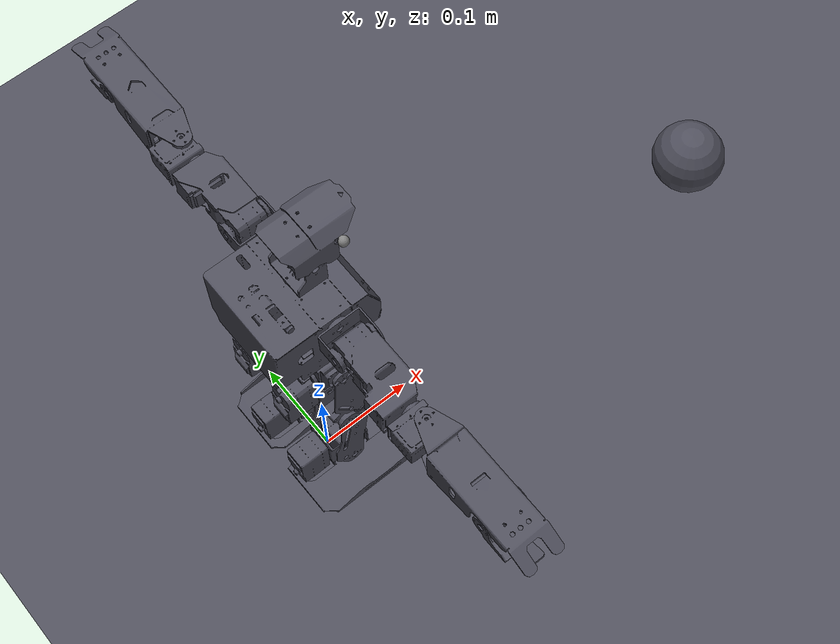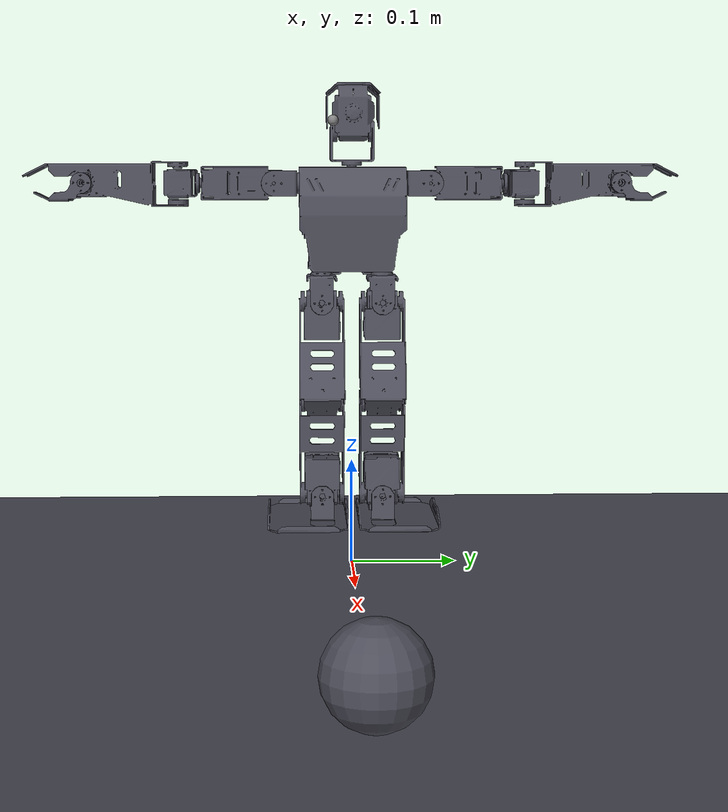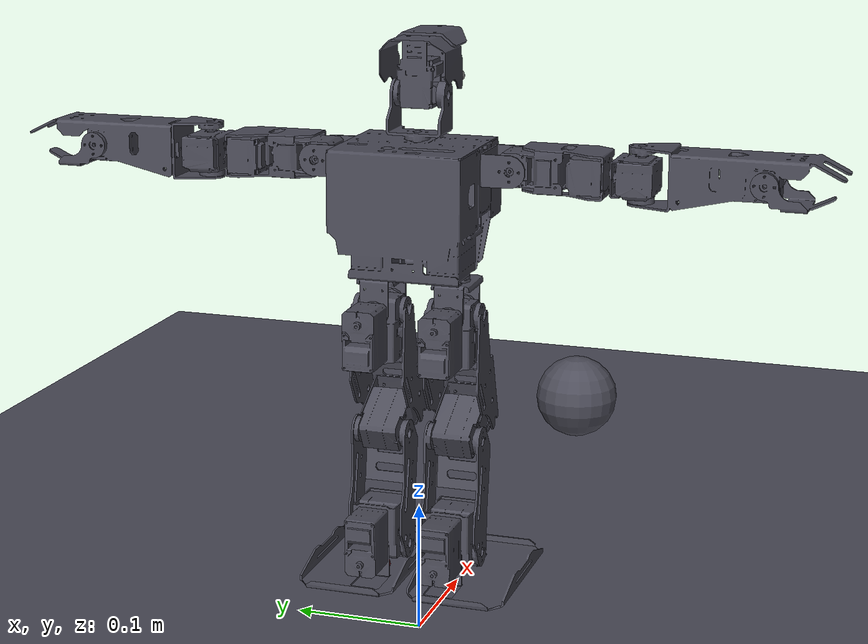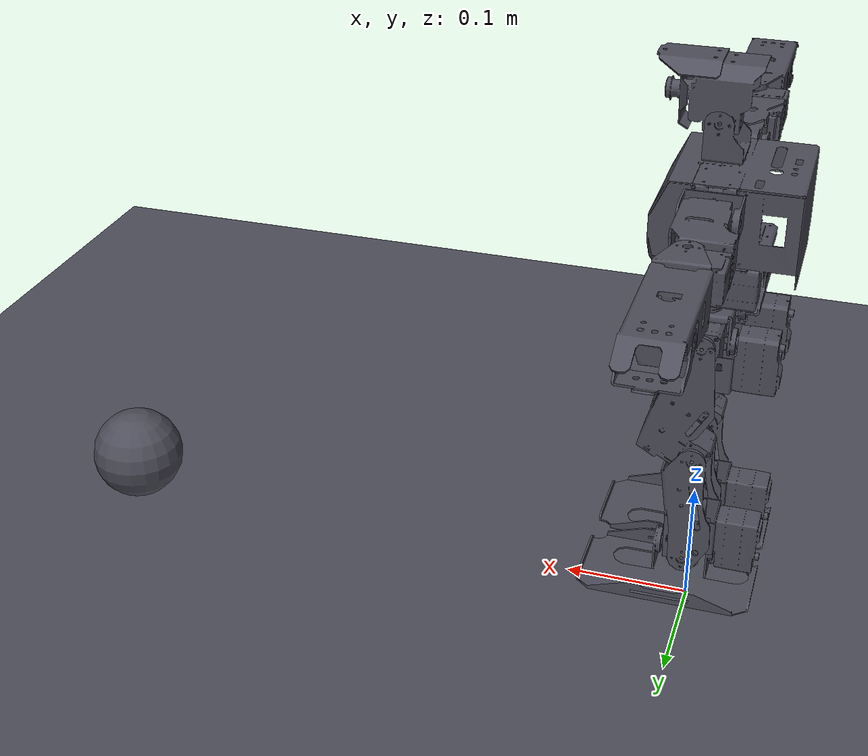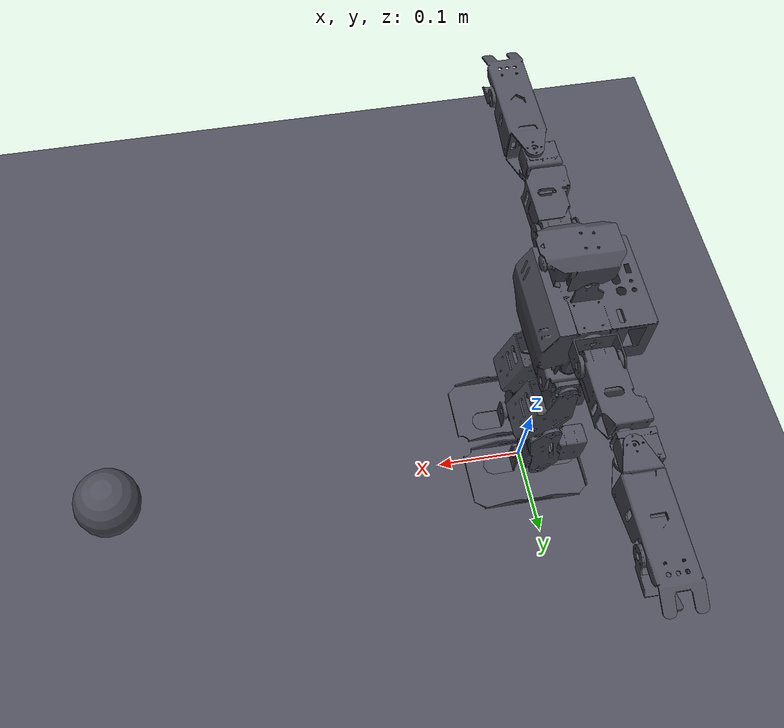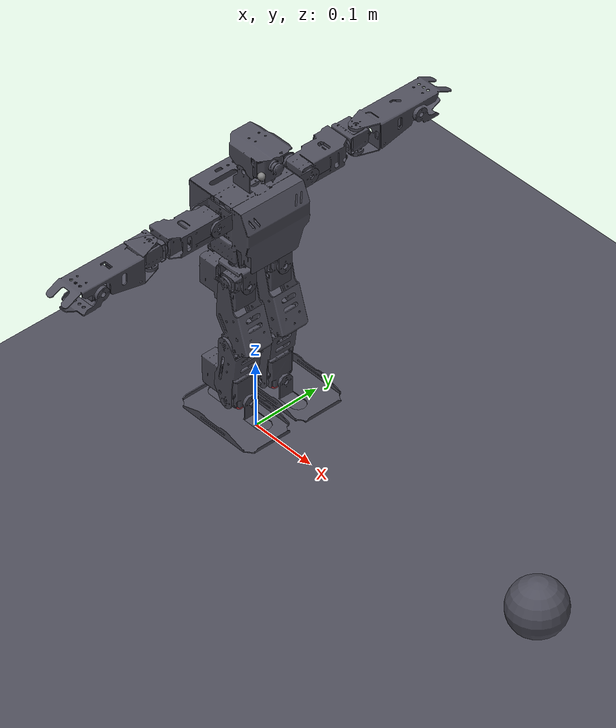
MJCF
<mujoco model="ainex">
  <compiler angle="radian" meshdir="../meshes/"
            autolimits="true"/>

  <option timestep="0.002" gravity="0 0 -9.81" solver="Newton" iterations="100" tolerance="1e-10"
          integrator="implicitfast" cone="elliptic">
    <flag warmstart="enable" contact="enable"/>
  </option>

  <default>
    <joint limited="true" damping="5.0" armature="0.04" frictionloss="0.1"
           range="-1.57 1.57"/>
    <geom contype="0" conaffinity="0" condim="3" friction="0.7 0.1 0.001"
          rgba="0.3 0.3 0.35 1" type="mesh"/>
    <motor ctrllimited="true" ctrlrange="-6 6"/>
    <position kp="50" kv="5"/>
  </default>

  <asset>
    <texture type="skybox" builtin="gradient" rgb1="0.4 0.6 0.8" rgb2="0.1 0.1 0.2" width="512" height="512"/>
    <texture name="grid" type="2d" builtin="checker" rgb1="0.35 0.4 0.45" rgb2="0.4 0.45 0.5"
             width="512" height="512" mark="edge" markrgb="0.5 0.55 0.6"/>
    <material name="grid" texture="grid" texrepeat="8 8" texuniform="true" reflectance="0.3"/>
    <material name="robot_dark" rgba="0.25 0.25 0.28 1" specular="0.4" shininess="0.5"/>
    <material name="robot_accent" rgba="0.3 0.5 0.9 1" specular="0.5" shininess="0.7"/>
    <material name="foot" rgba="0.3 0.3 0.3 1" specular="0.2" shininess="0.3"/>
    <material name="ball_red" rgba="0.9 0.15 0.15 1" specular="0.8" shininess="0.9"/>

    <!-- Robot meshes -->
    <mesh name="body_link" file="body_link.STL" scale="1 1 1"/>
    <mesh name="r_hip_yaw_link" file="r_hip_yaw_link.STL"/>
    <mesh name="r_hip_roll_link" file="r_hip_roll_link.STL"/>
    <mesh name="r_hip_pitch_link" file="r_hip_pitch_link.STL"/>
    <mesh name="r_knee_link" file="r_knee_link.STL"/>
    <mesh name="r_ank_pitch_link" file="r_ank_pitch_link.STL"/>
    <mesh name="r_ank_roll_link" file="r_ank_roll_link.STL"/>
    <mesh name="l_hip_yaw_link" file="l_hip_yaw_link.STL"/>
    <mesh name="l_hip_roll_link" file="l_hip_roll_link.STL"/>
    <mesh name="l_hip_pitch_link" file="l_hip_pitch_link.STL"/>
    <mesh name="l_knee_link" file="l_knee_link.STL"/>
    <mesh name="l_ank_pitch_link" file="l_ank_pitch_link.STL"/>
    <mesh name="l_ank_roll_link" file="l_ank_roll_link.STL"/>
    <mesh name="head_pan_link" file="head_pan_link.STL"/>
    <mesh name="head_tilt_link" file="head_tilt_link.STL"/>
    <mesh name="r_sho_pitch_link" file="r_sho_pitch_link.STL"/>
    <mesh name="r_sho_roll_link" file="r_sho_roll_link.STL"/>
    <mesh name="r_el_pitch_link" file="r_el_pitch_link.STL"/>
    <mesh name="r_el_yaw_link" file="r_el_yaw_link.STL"/>
    <mesh name="r_gripper_link" file="r_gripper_link.STL"/>
    <mesh name="l_sho_pitch_link" file="l_sho_pitch_link.STL"/>
    <mesh name="l_sho_roll_link" file="l_sho_roll_link.STL"/>
    <mesh name="l_el_pitch_link" file="l_el_pitch_link.STL"/>
    <mesh name="l_el_yaw_link" file="l_el_yaw_link.STL"/>
    <mesh name="l_gripper_link" file="l_gripper_link.STL"/>
  </asset>

  <worldbody>
    <!-- Ground -->
    <geom name="floor" type="plane" size="5 5 0.1" material="grid" conaffinity="1" contype="1"/>

    <!-- Lighting -->
    <light name="top" pos="0 0 3" dir="0 0 -1" diffuse="1.0 1.0 1.0" specular="0.5 0.5 0.5"/>
    <light name="front" pos="2 -2 3" dir="-0.5 0.5 -1" diffuse="0.7 0.7 0.7" specular="0.3 0.3 0.3"/>
    <light name="fill" pos="-1 2 2" dir="0.3 -0.5 -0.7" diffuse="0.4 0.4 0.5"/>

    <!-- Target ball -->
    <body name="target_ball" pos="0.5 0 0.04">
      <geom name="ball" type="sphere" size="0.04" material="ball_red" mass="0.05"
            contype="1" conaffinity="1"/>
      <joint name="ball_x" type="slide" axis="1 0 0" limited="false" damping="0"/>
      <joint name="ball_y" type="slide" axis="0 1 0" limited="false" damping="0"/>
      <joint name="ball_z" type="slide" axis="0 0 1" limited="false" damping="0"/>
    </body>

    <!-- Robot -->
    <body name="base_link" pos="0 0 0.28" euler="0 0 0">
      <freejoint name="root"/>

      <!-- Body (torso) -->
      <body name="body_link">
        <inertial pos="0.00394 -0.0000793 0.05045" mass="0.743"
                  fullinertia="0.00121619 0.00104402 0.00108564 2.48e-06 -5.348e-05 -2e-06"/>
        <geom name="body" mesh="body_link" material="robot_dark"/>
        <site name="imu" pos="0 0 0.05" size="0.005" rgba="0 1 0 0.5"/>

        <!-- ==================== RIGHT LEG ==================== -->
        <body name="r_hip_yaw_link" pos="0 -0.029 0">
          <joint name="r_hip_yaw" axis="0 0 -1"/>
          <inertial pos="-0.0000308 0.001257 -0.001371" mass="0.032"
                    fullinertia="1.756e-05 2.27e-05 9.05e-06 -2.8e-07 -3.3e-07 9.2e-07"/>
          <geom mesh="r_hip_yaw_link" material="robot_dark"/>

          <body name="r_hip_roll_link" pos="-0.01955 0 -0.0255">
            <joint name="r_hip_roll" axis="-1 0 0"/>
            <inertial pos="0.001362 -0.000567 -0.01342" mass="0.120"
                      fullinertia="2.918e-05 7.31e-05 6.05e-05 -9e-07 -4.5e-07 0.0"/>
            <geom mesh="r_hip_roll_link" material="robot_dark"/>

            <body name="r_hip_pitch_link" pos="0.01904 -0.02 0">
              <joint name="r_hip_pitch" axis="0 -1 0"/>
              <inertial pos="0.01359 0.01938 -0.07271" mass="0.1065"
                        fullinertia="0.00011009 0.00011292 4.163e-05 2.5e-07 -8.22e-06 5.8e-07"/>
              <geom mesh="r_hip_pitch_link" material="robot_dark"/>

              <body name="r_knee_link" pos="-0.000372 0.00005 -0.09689">
                <joint name="r_knee" axis="0 -1 0"/>
                <inertial pos="0.003343 0.01965 -0.04250" mass="0.045"
                          fullinertia="6.733e-05 5.5e-05 2.073e-05 5e-08 2.85e-06 0.0"/>
                <geom mesh="r_knee_link" material="robot_dark"/>

                <body name="r_ank_pitch_link" pos="0.001037 0 -0.08908">
                  <joint name="r_ank_pitch" axis="0 1 0"/>
                  <inertial pos="-0.01754 0.01956 0.01342" mass="0.120"
                            fullinertia="2.92e-05 7.365e-05 6.107e-05 -1.22e-06 4.7e-07 2e-08"/>
                  <geom mesh="r_ank_pitch_link" material="robot_dark"/>

                  <body name="r_ank_roll_link" pos="-0.01904 0.02 0">
                    <joint name="r_ank_roll" axis="1 0 0"/>
                    <inertial pos="0.02851 -0.01287 -0.01767" mass="0.0675"
                              fullinertia="4.217e-05 9.246e-05 0.00012567 -1.08e-06 -2.26e-06 3.04e-06"/>
                    <geom mesh="r_ank_roll_link" material="foot"
                          friction="1.5 0.5 0.01" contype="0" conaffinity="0"
                          solimp="0.95 0.99 0.001" solref="0.004 1"/>
                    <site name="right_foot" pos="0.02 0 -0.02" size="0.005" rgba="1 0 0 0.5"/>
                    <geom name="r_foot1" type="box" size="0.04 0.025 0.005"
                          pos="0.02 0 -0.025" rgba="0.3 0.3 0.3 0"
                          friction="1.5 0.5 0.01" contype="1" conaffinity="1"/>
                    <geom name="r_foot2" type="box" size="0.02 0.025 0.005"
                          pos="-0.01 0 -0.025" rgba="0.3 0.3 0.3 0"
                          friction="1.5 0.5 0.01" contype="1" conaffinity="1"/>
                  </body>
                </body>
              </body>
            </body>
          </body>
        </body>

        <!-- ==================== LEFT LEG ==================== -->
        <body name="l_hip_yaw_link" pos="0 0.029 0">
          <joint name="l_hip_yaw" axis="0 0 -1"/>
          <inertial pos="-0.0000311 -0.001257 -0.001371" mass="0.032"
                    fullinertia="1.756e-05 2.27e-05 9.05e-06 2.88e-07 -3.3e-07 -9.2e-07"/>
          <geom mesh="l_hip_yaw_link" material="robot_dark"/>

          <body name="l_hip_roll_link" pos="-0.01955 0 -0.0255">
            <joint name="l_hip_roll" axis="-1 0 0"/>
            <inertial pos="0.001362 0.000567 -0.01342" mass="0.120"
                      fullinertia="2.918e-05 7.31e-05 6.05e-05 9e-07 -4.5e-07 0.0"/>
            <geom mesh="l_hip_roll_link" material="robot_dark"/>

            <body name="l_hip_pitch_link" pos="0.019037 0.02 0">
              <joint name="l_hip_pitch" axis="0 1 0"/>
              <inertial pos="0.01359 -0.01938 -0.07271" mass="0.1065"
                        fullinertia="0.00011009 0.00011292 4.163e-05 -2.5e-07 -8.22e-06 -5.8e-07"/>
              <geom mesh="l_hip_pitch_link" material="robot_dark"/>

              <body name="l_knee_link" pos="-0.00037204 -0.00005 -0.096886">
                <joint name="l_knee" axis="0 1 0"/>
                <inertial pos="0.003343 -0.01965 -0.04251" mass="0.045"
                          fullinertia="6.733e-05 5.5e-05 2.073e-05 -4e-08 2.85e-06 0.0"/>
                <geom mesh="l_knee_link" material="robot_dark"/>

                <body name="l_ank_pitch_link" pos="0.001037 0 -0.089077">
                  <joint name="l_ank_pitch" axis="0 -1 0"/>
                  <inertial pos="-0.01754 -0.01956 0.01342" mass="0.120"
                            fullinertia="2.92e-05 7.365e-05 6.107e-05 1.22e-06 4.7e-07 -2e-08"/>
                  <geom mesh="l_ank_pitch_link" material="robot_dark"/>

                  <body name="l_ank_roll_link" pos="-0.019037 -0.02 0">
                    <joint name="l_ank_roll" axis="1 0 0"/>
                    <inertial pos="0.02851 0.01287 -0.01767" mass="0.0675"
                              fullinertia="4.217e-05 9.246e-05 0.00012567 1.08e-06 -2.26e-06 -3.04e-06"/>
                    <geom mesh="l_ank_roll_link" material="foot"
                          friction="1.5 0.5 0.01" contype="0" conaffinity="0"
                          solimp="0.95 0.99 0.001" solref="0.004 1"/>
                    <site name="left_foot" pos="0.02 0 -0.02" size="0.005" rgba="1 0 0 0.5"/>
                    <geom name="l_foot1" type="box" size="0.04 0.025 0.005"
                          pos="0.02 0 -0.025" rgba="0.3 0.3 0.3 0"
                          friction="1.5 0.5 0.01" contype="1" conaffinity="1"/>
                    <geom name="l_foot2" type="box" size="0.02 0.025 0.005"
                          pos="-0.01 0 -0.025" rgba="0.3 0.3 0.3 0"
                          friction="1.5 0.5 0.01" contype="1" conaffinity="1"/>
                  </body>
                </body>
              </body>
            </body>
          </body>
        </body>

        <!-- ==================== HEAD ==================== -->
        <body name="head_pan_link" pos="-0.00410 0 0.10780">
          <joint name="head_pan" axis="0 0 -1"/>
          <inertial pos="0.00549 0.000157 0.01413" mass="0.00767"
                    fullinertia="2.12e-06 9.87e-07 1.84e-06 0.0 -1.44e-07 0.0"/>
          <geom mesh="head_pan_link" material="robot_accent"/>

          <body name="head_tilt_link" pos="0.00905 -0.01857 0.02816">
            <joint name="head_tilt" axis="0 -1 0"/>
            <inertial pos="0.01134 0.01892 0.02212" mass="0.02622"
                      fullinertia="6.2e-06 6.32e-06 6.9e-06 1e-08 8e-07 -2e-08"/>
            <geom mesh="head_tilt_link" material="robot_accent"/>

            <!-- Camera site for rendering -->
            <site name="camera_eye" pos="0.03 0 0.01" euler="0 0 0" size="0.005"/>
            <camera name="head_cam" pos="0.03 0 0.01" fovy="49.1" mode="fixed"/>
          </body>
        </body>

        <!-- ==================== RIGHT ARM ==================== -->
        <body name="r_sho_pitch_link" pos="-0.0000547 -0.05249 0.08745">
          <joint name="r_sho_pitch" axis="0 -1 0" damping="3.0" armature="0.08" frictionloss="0.2"/>
          <inertial pos="0.000376 -0.01133 0.0000021" mass="0.0128"
                    fullinertia="2.05e-06 3.9e-06 5.03e-06 -5e-08 0.0 0.0"/>
          <geom mesh="r_sho_pitch_link" material="robot_dark"/>

          <body name="r_sho_roll_link" pos="0.020003 -0.02151 0">
            <joint name="r_sho_roll" axis="1 0 0" damping="3.0" armature="0.08" frictionloss="0.2"/>
            <inertial pos="-0.02050 -0.02784 -0.0000611" mass="0.121"
                      fullinertia="7.3e-05 2.527e-05 7.539e-05 8.68e-06 -5e-08 -1.8e-07"/>
            <geom mesh="r_sho_roll_link" material="robot_dark"/>

            <body name="r_el_pitch_link" pos="-0.020003 -0.07411 0">
              <joint name="r_el_pitch" axis="0 -1 0" damping="3.0" armature="0.08" frictionloss="0.2"/>
              <inertial pos="-0.006976 -0.01290 0.000205" mass="0.045"
                        fullinertia="7.97e-06 8.3e-06 1.053e-05 6.5e-07 -1.5e-07 -5e-08"/>
              <geom mesh="r_el_pitch_link" material="robot_dark"/>

              <body name="r_el_yaw_link" pos="0.000398 -0.01702 0.01907">
                <joint name="r_el_yaw" axis="0 0 1" damping="3.0" armature="0.08" frictionloss="0.2"/>
                <inertial pos="-0.000229 -0.05727 -0.01387" mass="0.102"
                          fullinertia="0.0001432 3.101e-05 0.00014052 3e-07 -3e-08 -1.329e-05"/>
                <geom mesh="r_el_yaw_link" material="robot_dark"/>

                <body name="r_gripper_link" pos="0.01989 -0.08924 -0.01907">
                  <joint name="r_gripper" axis="1 0 0" damping="3.0" armature="0.08" frictionloss="0.2"/>
                  <inertial pos="-0.01939 -0.00931 -0.00543" mass="0.0135"
                            fullinertia="3.28e-06 4.51e-06 5.97e-06 -3e-08 -2e-08 1.05e-06"/>
                  <geom mesh="r_gripper_link" material="robot_dark"/>
                </body>
              </body>
            </body>
          </body>
        </body>

        <!-- ==================== LEFT ARM ==================== -->
        <body name="l_sho_pitch_link" pos="-0.0000547 0.052491 0.087448">
          <joint name="l_sho_pitch" axis="0 -1 0" damping="3.0" armature="0.08" frictionloss="0.2"/>
          <inertial pos="0.000376 0.01133 0.0000020" mass="0.0128"
                    fullinertia="2.05e-06 3.9e-06 5.03e-06 5e-08 0.0 0.0"/>
          <geom mesh="l_sho_pitch_link" material="robot_dark"/>

          <body name="l_sho_roll_link" pos="0.020003 0.021507 0">
            <joint name="l_sho_roll" axis="1 0 0" damping="3.0" armature="0.08" frictionloss="0.2"/>
            <inertial pos="-0.020504 0.027838 -0.0000604" mass="0.121"
                      fullinertia="7.3e-05 2.527e-05 7.539e-05 -8.68e-06 -5e-08 1.8e-07"/>
            <geom mesh="l_sho_roll_link" material="robot_dark"/>

            <body name="l_el_pitch_link" pos="-0.020003 0.074109 0">
              <joint name="l_el_pitch" axis="0 -1 0" damping="3.0" armature="0.08" frictionloss="0.2"/>
              <inertial pos="-0.006976 0.012896 0.000207" mass="0.045"
                        fullinertia="7.97e-06 8.3e-06 1.053e-05 -6.5e-07 -1.5e-07 5e-08"/>
              <geom mesh="l_el_pitch_link" material="robot_dark"/>

              <body name="l_el_yaw_link" pos="0.000395 0.017019 0.019072">
                <joint name="l_el_yaw" axis="0 0 1" damping="3.0" armature="0.08" frictionloss="0.2"/>
                <inertial pos="-0.000226 0.057271 -0.013870" mass="0.102"
                          fullinertia="0.0001432 3.101e-05 0.00014052 -3e-07 -3e-08 1.329e-05"/>
                <geom mesh="l_el_yaw_link" material="robot_dark"/>

                <body name="l_gripper_link" pos="0.019893 0.089232 -0.019072">
                  <joint name="l_gripper" axis="1 0 0" damping="3.0" armature="0.08" frictionloss="0.2"/>
                  <inertial pos="-0.019384 0.009314 -0.005426" mass="0.0135"
                            fullinertia="3.28e-06 4.51e-06 5.97e-06 3e-08 -2e-08 -1.05e-06"/>
                  <geom mesh="l_gripper_link" material="robot_dark"/>
                </body>
              </body>
            </body>
          </body>
        </body>

      </body><!-- /body_link -->
    </body><!-- /base_link -->
  </worldbody>

  <!-- Exclude adjacent-link self-collision -->
  <contact>
    <exclude body1="body_link" body2="r_hip_yaw_link"/>
    <exclude body1="body_link" body2="l_hip_yaw_link"/>
    <exclude body1="body_link" body2="head_pan_link"/>
    <exclude body1="body_link" body2="r_sho_pitch_link"/>
    <exclude body1="body_link" body2="l_sho_pitch_link"/>
    <exclude body1="r_hip_yaw_link" body2="r_hip_roll_link"/>
    <exclude body1="r_hip_roll_link" body2="r_hip_pitch_link"/>
    <exclude body1="r_hip_pitch_link" body2="r_knee_link"/>
    <exclude body1="r_knee_link" body2="r_ank_pitch_link"/>
    <exclude body1="r_ank_pitch_link" body2="r_ank_roll_link"/>
    <exclude body1="l_hip_yaw_link" body2="l_hip_roll_link"/>
    <exclude body1="l_hip_roll_link" body2="l_hip_pitch_link"/>
    <exclude body1="l_hip_pitch_link" body2="l_knee_link"/>
    <exclude body1="l_knee_link" body2="l_ank_pitch_link"/>
    <exclude body1="l_ank_pitch_link" body2="l_ank_roll_link"/>
    <exclude body1="head_pan_link" body2="head_tilt_link"/>
    <exclude body1="r_sho_pitch_link" body2="r_sho_roll_link"/>
    <exclude body1="r_sho_roll_link" body2="r_el_pitch_link"/>
    <exclude body1="r_el_pitch_link" body2="r_el_yaw_link"/>
    <exclude body1="r_el_yaw_link" body2="r_gripper_link"/>
    <exclude body1="l_sho_pitch_link" body2="l_sho_roll_link"/>
    <exclude body1="l_sho_roll_link" body2="l_el_pitch_link"/>
    <exclude body1="l_el_pitch_link" body2="l_el_yaw_link"/>
    <exclude body1="l_el_yaw_link" body2="l_gripper_link"/>
  </contact>

  <!-- Position-controlled actuators for all 24 joints -->
  <actuator>
    <!-- Legs (position control, stiff servos) -->
    <position name="r_hip_yaw_act"   joint="r_hip_yaw"   kp="50" kv="5"/>
    <position name="r_hip_roll_act"  joint="r_hip_roll"  kp="50" kv="5"/>
    <position name="r_hip_pitch_act" joint="r_hip_pitch" kp="50" kv="5"/>
    <position name="r_knee_act"      joint="r_knee"      kp="50" kv="5"/>
    <position name="r_ank_pitch_act" joint="r_ank_pitch" kp="50" kv="5"/>
    <position name="r_ank_roll_act"  joint="r_ank_roll"  kp="50" kv="5"/>

    <position name="l_hip_yaw_act"   joint="l_hip_yaw"   kp="50" kv="5"/>
    <position name="l_hip_roll_act"  joint="l_hip_roll"  kp="50" kv="5"/>
    <position name="l_hip_pitch_act" joint="l_hip_pitch" kp="50" kv="5"/>
    <position name="l_knee_act"      joint="l_knee"      kp="50" kv="5"/>
    <position name="l_ank_pitch_act" joint="l_ank_pitch" kp="50" kv="5"/>
    <position name="l_ank_roll_act"  joint="l_ank_roll"  kp="50" kv="5"/>

    <!-- Head (softer servos) -->
    <position name="head_pan_act"  joint="head_pan"  kp="10" kv="1"/>
    <position name="head_tilt_act" joint="head_tilt" kp="10" kv="1"/>

    <!-- Arms (soft servos) -->
    <position name="r_sho_pitch_act" joint="r_sho_pitch" kp="10" kv="1"/>
    <position name="r_sho_roll_act"  joint="r_sho_roll"  kp="10" kv="1"/>
    <position name="r_el_pitch_act"  joint="r_el_pitch"  kp="10" kv="1"/>
    <position name="r_el_yaw_act"    joint="r_el_yaw"    kp="10" kv="1"/>
    <position name="r_gripper_act"   joint="r_gripper"   kp="10" kv="1"/>

    <position name="l_sho_pitch_act" joint="l_sho_pitch" kp="10" kv="1"/>
    <position name="l_sho_roll_act"  joint="l_sho_roll"  kp="10" kv="1"/>
    <position name="l_el_pitch_act"  joint="l_el_pitch"  kp="10" kv="1"/>
    <position name="l_el_yaw_act"    joint="l_el_yaw"    kp="10" kv="1"/>
    <position name="l_gripper_act"   joint="l_gripper"   kp="10" kv="1"/>
  </actuator>

  <!-- Sensors (following MuJoCo Playground OP3 pattern) -->
  <sensor>
    <!-- IMU sensors on torso -->
    <accelerometer name="accelerometer" site="imu"/>
    <gyro name="gyro" site="imu"/>
    <framezaxis name="upvector" objtype="site" objname="imu"/>

    <!-- Velocity sensors -->
    <framelinvel name="global_linvel" objtype="site" objname="imu"/>
    <frameangvel name="global_angvel" objtype="site" objname="imu"/>
    <velocimeter name="local_linvel" site="imu"/>

    <!-- Body state -->
    <framequat name="body_quat" objtype="body" objname="body_link"/>
    <subtreecom name="com" body="base_link"/>

    <!-- Foot velocity sensors -->
    <framelinvel name="left_foot_global_linvel" objtype="site" objname="left_foot"/>
    <framelinvel name="right_foot_global_linvel" objtype="site" objname="right_foot"/>

    <!-- Foot contact sensors (contact pair for floor detection) -->
    <contact name="l_foot1_floor_found" geom1="l_foot1" geom2="floor" reduce="mindist" num="1" data="found"/>
    <contact name="l_foot2_floor_found" geom1="l_foot2" geom2="floor" reduce="mindist" num="1" data="found"/>
    <contact name="r_foot1_floor_found" geom1="r_foot1" geom2="floor" reduce="mindist" num="1" data="found"/>
    <contact name="r_foot2_floor_found" geom1="r_foot2" geom2="floor" reduce="mindist" num="1" data="found"/>
  </sensor>

  <!-- Keyframes for initial poses -->
  <keyframe>
    <!-- Standing straight (legs at zero, arms tucked) -->
    <!-- qpos order: root(7) + joints in body order -->
    <!-- root: x y z qw qx qy qz = 0 0 0.24 1 0 0 0 -->
    <!-- ball: x y z = 0.5 0 0.04 -->
    <!-- joints: r_hip_yaw r_hip_roll r_hip_pitch r_knee r_ank_pitch r_ank_roll -->
    <!--         l_hip_yaw l_hip_roll l_hip_pitch l_knee l_ank_pitch l_ank_roll -->
    <!--         head_pan head_tilt -->
    <!--         r_sho_pitch r_sho_roll r_el_pitch r_el_yaw r_gripper -->
    <!--         l_sho_pitch l_sho_roll l_el_pitch l_el_yaw l_gripper -->
    <!-- qpos order: ball_x ball_y ball_z (3) | root_x root_y root_z root_qw root_qx root_qy root_qz (7) | joints (24) -->
    <key name="stand"
         qpos="0.5 0 0.04
               0 0 0.24 1 0 0 0
               0 0 0 0 0 0
               0 0 0 0 0 0
               0 0
               0 1.403 0 1.226 0
               0 -1.403 0 -1.226 0"/>
    <key name="stand_bent_knees"
         qpos="0.5 0 0.04
               0 0 0.24 1 0 0 0
               0 0 -0.3 0.6 -0.3 0
               0 0 0.3 -0.6 0.3 0
               0 0
               0 1.403 0 1.226 0
               0 -1.403 0 -1.226 0"/>
  </keyframe>

</mujoco>
